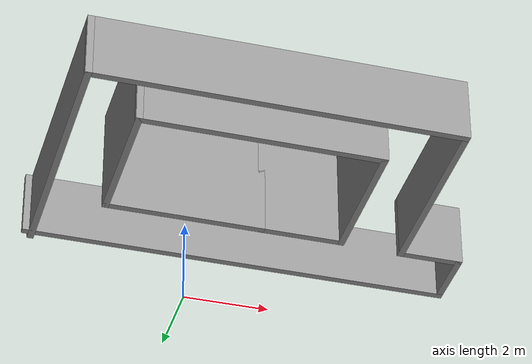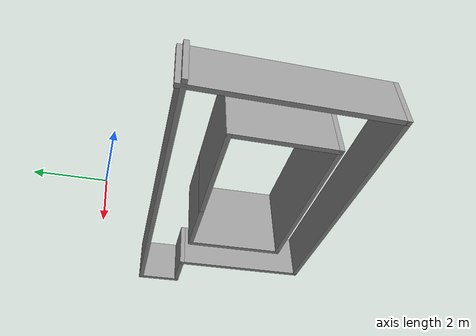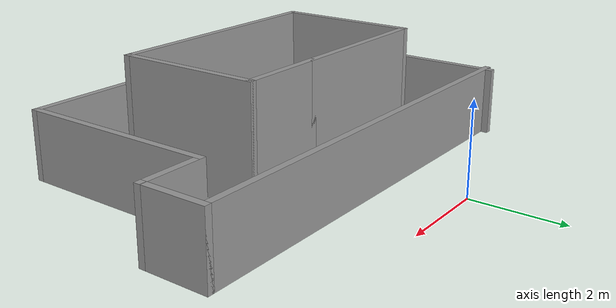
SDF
<?xml version='1.0'?>
<sdf version='1.6'>
  <model name='corridor3'>
    <pose frame=''>0.81 -4.345 0 0 -0 0</pose>
    <link name='Wall_0'>
      <collision name='Wall_0_Collision'>
        <geometry>
          <box>
            <size>9.75 0.15 1.5</size>
          </box>
        </geometry>
        <pose frame=''>0 0 0.75 0 -0 0</pose>
      </collision>
      <visual name='Wall_0_Visual'>
        <pose frame=''>0 0 0.75 0 -0 0</pose>
        <geometry>
          <box>
            <size>9.75 0.15 1.5</size>
          </box>
        </geometry>
        <material>
          <script>
            <uri>file://media/materials/scripts/gazebo.material</uri>
            <name>Gazebo/Grey</name>
          </script>
          <ambient>1 1 1 1</ambient>
        </material>
        <meta>
          <layer>0</layer>
        </meta>
      </visual>
      <pose frame=''>-0 2.775 0 0 -0 0</pose>
    </link>
    <link name='Wall_1'>
      <collision name='Wall_1_Collision'>
        <geometry>
          <box>
            <size>1.5 0.15 1.5</size>
          </box>
        </geometry>
        <pose frame=''>0 0 0.75 0 -0 0</pose>
      </collision>
      <visual name='Wall_1_Visual'>
        <pose frame=''>0 0 0.75 0 -0 0</pose>
        <geometry>
          <box>
            <size>1.5 0.15 1.5</size>
          </box>
        </geometry>
        <material>
          <script>
            <uri>file://media/materials/scripts/gazebo.material</uri>
            <name>Gazebo/Grey</name>
          </script>
          <ambient>1 1 1 1</ambient>
        </material>
        <meta>
          <layer>0</layer>
        </meta>
      </visual>
      <pose frame=''>4.8 2.1 0 0 -0 -1.5708</pose>
    </link>
    <link name='Wall_10'>
      <collision name='Wall_10_Collision'>
        <geometry>
          <box>
            <size>3.25 0.15 2.5</size>
          </box>
        </geometry>
        <pose frame=''>0 0 1.25 0 -0 0</pose>
      </collision>
      <visual name='Wall_10_Visual'>
        <pose frame=''>0 0 1.25 0 -0 0</pose>
        <geometry>
          <box>
            <size>3.25 0.15 2.5</size>
          </box>
        </geometry>
        <material>
          <script>
            <uri>file://media/materials/scripts/gazebo.material</uri>
            <name>Gazebo/Grey</name>
          </script>
          <ambient>1 1 1 1</ambient>
        </material>
        <meta>
          <layer>0</layer>
        </meta>
      </visual>
      <pose frame=''>-3.31 -0.185 0 0 -0 1.5708</pose>
    </link>
    <link name='Wall_11'>
      <collision name='Wall_11_Collision'>
        <geometry>
          <box>
            <size>3.65 0.15 2.5</size>
          </box>
        </geometry>
        <pose frame=''>0 0 1.25 0 -0 0</pose>
      </collision>
      <visual name='Wall_11_Visual'>
        <pose frame=''>0 0 1.25 0 -0 0</pose>
        <geometry>
          <box>
            <size>3.65 0.15 2.5</size>
          </box>
        </geometry>
        <material>
          <script>
            <uri>file://media/materials/scripts/gazebo.material</uri>
            <name>Gazebo/Grey</name>
          </script>
          <ambient>1 1 1 1</ambient>
        </material>
        <meta>
          <layer>0</layer>
        </meta>
      </visual>
      <pose frame=''>-1.56 1.365 0 0 -0 0</pose>
    </link>
    <link name='Wall_2'>
      <collision name='Wall_2_Collision'>
        <geometry>
          <box>
            <size>1.5 0.15 1.5</size>
          </box>
        </geometry>
        <pose frame=''>0 0 0.75 0 -0 0</pose>
      </collision>
      <visual name='Wall_2_Visual'>
        <pose frame=''>0 0 0.75 0 -0 0</pose>
        <geometry>
          <box>
            <size>1.5 0.15 1.5</size>
          </box>
        </geometry>
        <material>
          <script>
            <uri>file://media/materials/scripts/gazebo.material</uri>
            <name>Gazebo/Grey</name>
          </script>
          <ambient>1 1 1 1</ambient>
        </material>
        <meta>
          <layer>0</layer>
        </meta>
      </visual>
      <pose frame=''>4.125 1.425 0 0 -0 3.14159</pose>
    </link>
    <link name='Wall_3'>
      <collision name='Wall_3_Collision'>
        <geometry>
          <box>
            <size>4.5 0.15 1.5</size>
          </box>
        </geometry>
        <pose frame=''>0 0 0.75 0 -0 0</pose>
      </collision>
      <visual name='Wall_3_Visual'>
        <pose frame=''>0 0 0.75 0 -0 0</pose>
        <geometry>
          <box>
            <size>4.5 0.15 1.5</size>
          </box>
        </geometry>
        <material>
          <script>
            <uri>file://media/materials/scripts/gazebo.material</uri>
            <name>Gazebo/Grey</name>
          </script>
          <ambient>1 1 1 1</ambient>
        </material>
        <meta>
          <layer>0</layer>
        </meta>
      </visual>
      <pose frame=''>3.45 -0.75 0 0 -0 -1.5708</pose>
    </link>
    <link name='Wall_4'>
      <collision name='Wall_4_Collision'>
        <geometry>
          <box>
            <size>8.25 0.15 1.5</size>
          </box>
        </geometry>
        <pose frame=''>0 0 0.75 0 -0 0</pose>
      </collision>
      <visual name='Wall_4_Visual'>
        <pose frame=''>0 0 0.75 0 -0 0</pose>
        <geometry>
          <box>
            <size>8.25 0.15 1.5</size>
          </box>
        </geometry>
        <material>
          <script>
            <uri>file://media/materials/scripts/gazebo.material</uri>
            <name>Gazebo/Grey</name>
          </script>
          <ambient>1 1 1 1</ambient>
        </material>
        <meta>
          <layer>0</layer>
        </meta>
      </visual>
      <pose frame=''>-0.6 -2.925 0 0 -0 3.14159</pose>
    </link>
    <link name='Wall_5'>
      <collision name='Wall_5_Collision'>
        <geometry>
          <box>
            <size>6 0.15 1.5</size>
          </box>
        </geometry>
        <pose frame=''>0 0 0.75 0 -0 0</pose>
      </collision>
      <visual name='Wall_5_Visual'>
        <pose frame=''>0 0 0.75 0 -0 0</pose>
        <geometry>
          <box>
            <size>6 0.15 1.5</size>
          </box>
        </geometry>
        <material>
          <script>
            <uri>file://media/materials/scripts/gazebo.material</uri>
            <name>Gazebo/Grey</name>
          </script>
          <ambient>1 1 1 1</ambient>
        </material>
        <meta>
          <layer>0</layer>
        </meta>
      </visual>
      <pose frame=''>-4.65 0 0 0 -0 1.5708</pose>
    </link>
    <link name='Wall_7'>
      <collision name='Wall_7_Collision'>
        <geometry>
          <box>
            <size>2 0.15 2.5</size>
          </box>
        </geometry>
        <pose frame=''>0 0 1.25 0 -0 0</pose>
      </collision>
      <visual name='Wall_7_Visual'>
        <pose frame=''>0 0 1.25 0 -0 0</pose>
        <geometry>
          <box>
            <size>2 0.15 2.5</size>
          </box>
        </geometry>
        <material>
          <script>
            <uri>file://media/materials/scripts/gazebo.material</uri>
            <name>Gazebo/Grey</name>
          </script>
          <ambient>1 1 1 1</ambient>
        </material>
        <meta>
          <layer>0</layer>
        </meta>
      </visual>
      <pose frame=''>1.115 1.365 0 0 -0 0</pose>
    </link>
    <link name='Wall_8'>
      <collision name='Wall_8_Collision'>
        <geometry>
          <box>
            <size>3.25 0.15 2.5</size>
          </box>
        </geometry>
        <pose frame=''>0 0 1.25 0 -0 0</pose>
      </collision>
      <visual name='Wall_8_Visual'>
        <pose frame=''>0 0 1.25 0 -0 0</pose>
        <geometry>
          <box>
            <size>3.25 0.15 2.5</size>
          </box>
        </geometry>
        <material>
          <script>
            <uri>file://media/materials/scripts/gazebo.material</uri>
            <name>Gazebo/Grey</name>
          </script>
          <ambient>1 1 1 1</ambient>
        </material>
        <meta>
          <layer>0</layer>
        </meta>
      </visual>
      <pose frame=''>2.04 -0.185 0 0 -0 -1.5708</pose>
    </link>
    <link name='Wall_9'>
      <collision name='Wall_9_Collision'>
        <geometry>
          <box>
            <size>5.5 0.15 2.5</size>
          </box>
        </geometry>
        <pose frame=''>0 0 1.25 0 -0 0</pose>
      </collision>
      <visual name='Wall_9_Visual'>
        <pose frame=''>0 0 1.25 0 -0 0</pose>
        <geometry>
          <box>
            <size>5.5 0.15 2.5</size>
          </box>
        </geometry>
        <material>
          <script>
            <uri>file://media/materials/scripts/gazebo.material</uri>
            <name>Gazebo/Grey</name>
          </script>
          <ambient>1 1 1 1</ambient>
        </material>
        <meta>
          <layer>0</layer>
        </meta>
      </visual>
      <pose frame=''>-0.635 -1.735 0 0 -0 3.14159</pose>
    </link>
    <static>1</static>
  </model>
</sdf>
